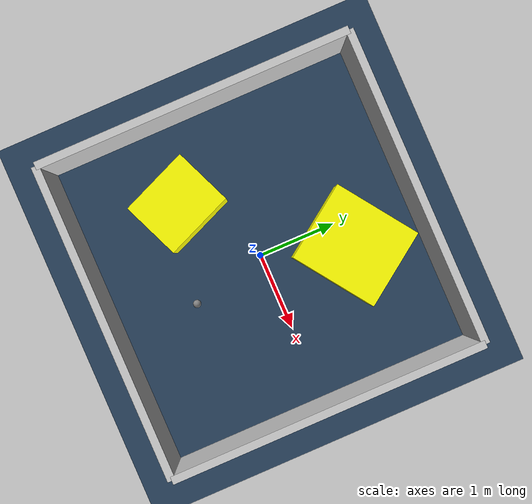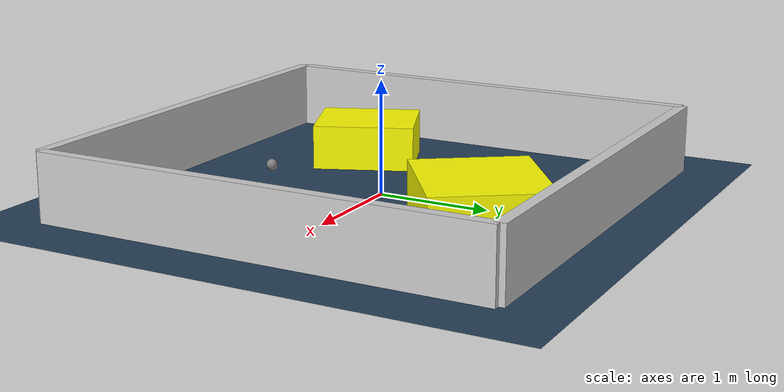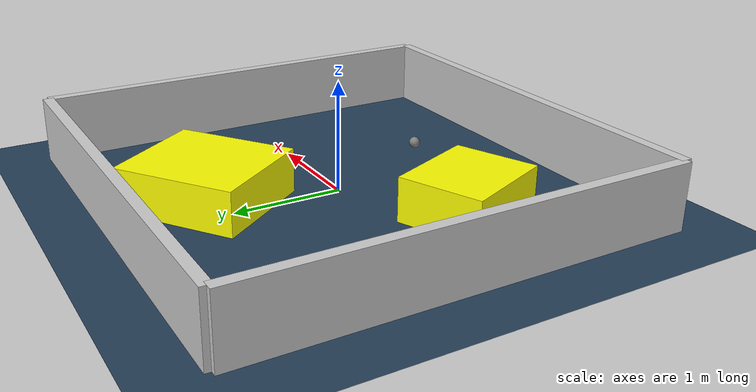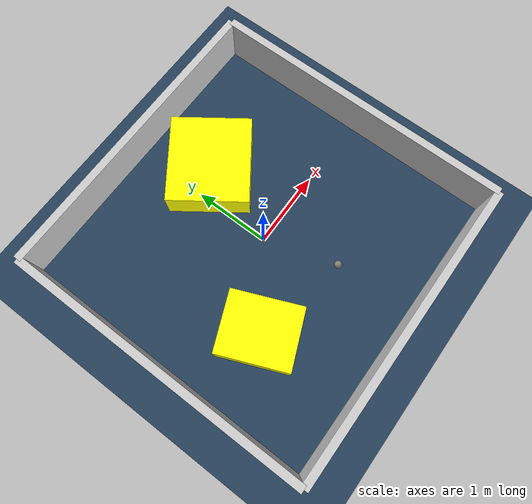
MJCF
<?xml version="1.0" ?>
<mujoco model="generated_environment">
  <option timestep="0.01" integrator="RK4" cone="elliptic"/>
  <default>
    <geom density="1"/>
  </default>
  <asset>
    <texture builtin="gradient" height="3072" rgb1="0.3 0.5 0.7" rgb2="0 0 0" type="skybox" width="512"/>
    <texture builtin="checker" height="300" mark="edge" markrgb="0.8 0.8 0.8" name="groundplane" rgb1="0.2 0.3 0.4" rgb2="0.1 0.2 0.3" type="2d" width="300"/>
    <material name="groundplane" reflectance="0.2" texrepeat="5 5" texture="groundplane" texuniform="true"/>
    <material name="robot" rgba="0.0 1.0 0.0 1"/>
  </asset>
  <worldbody>
    <light dir="0 0 -1" directional="true" pos="0 0 1.5"/>
    <geom condim="4" friction="1.0 0.005 0.001" material="groundplane" name="floor" size="0 0 0.05" type="plane"/>
    <body name="walls">
      <geom name="wall_1" condim="4" pos="-2.0 0.0 0.3" rgba="0.800000011920929 0.800000011920929 0.800000011920929 1.0" size="0.05 2.0 0.3" type="box"/>
      <geom name="wall_2" condim="4" pos="2.0 0.0 0.3" rgba="0.800000011920929 0.800000011920929 0.800000011920929 1.0" size="0.05 2.0 0.3" type="box"/>
      <geom name="wall_3" condim="4" pos="0.0 -2.0 0.3" rgba="0.800000011920929 0.800000011920929 0.800000011920929 1.0" size="2.0 0.05 0.3" type="box"/>
      <geom name="wall_4" condim="4" pos="0.0 2.0 0.3" rgba="0.800000011920929 0.800000011920929 0.800000011920929 1.0" size="2.0 0.05 0.3" type="box"/>
    </body>
    <body name="robot">
      <joint name="joint_x" type="slide" pos="0 0 0" axis="1 0 0"/>
      <joint name="joint_y" type="slide" pos="0 0 0" axis="0 1 0"/>
      <geom name="robot" type="sphere" pos="0.23822293527834493 -0.9549425564580363 0.2" size="0.05" mass="5." friction="1.0 0.005 0.0001" condim="4"/>
      <site name="sensor_ball"/>
    </body>
    <body name="obstacle_1_movable">
      <geom name="obstacle_1_movable" condim="4" pos="0.3463136042975161 1.0945465262104903 0.2" euler="0 0 125.28829226676059" friction="1.0 0.005 0.001" rgba="1 1 0 1" size="0.5164353764580658 0.5678396962364574 0.2" type="box" mass="0.1"/>
      <joint type="free"/>
    </body>
    <body name="obstacle_2_movable">
      <geom name="obstacle_2_movable" condim="4" pos="-0.9708115826907571 -0.6755475765308243 0.2" euler="0 0 202.5845768920724" friction="1.0 0.005 0.001" rgba="1 1 0 1" size="0.38425759496052525 0.45538542424893197 0.2" type="box" mass="0.1"/>
      <joint type="free"/>
    </body>
  </worldbody>
  <actuator>
    <motor name="actuator_x" joint="joint_x" gear="1" ctrlrange="-1 1"/>
    <motor name="actuator_y" joint="joint_y" gear="1" ctrlrange="-1 1"/>
  </actuator>
</mujoco>
